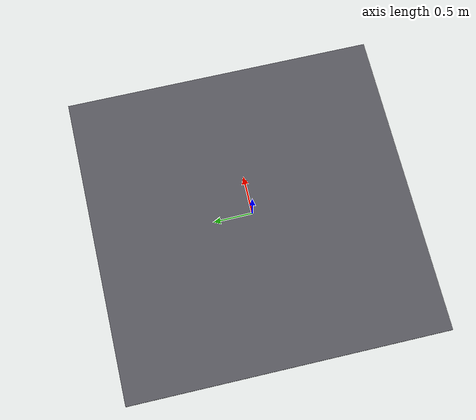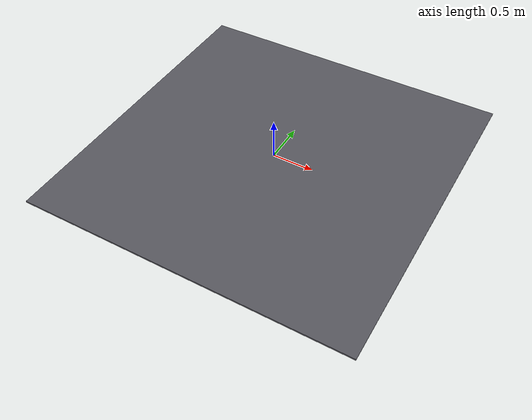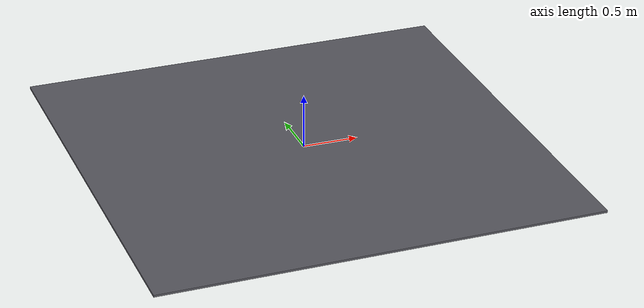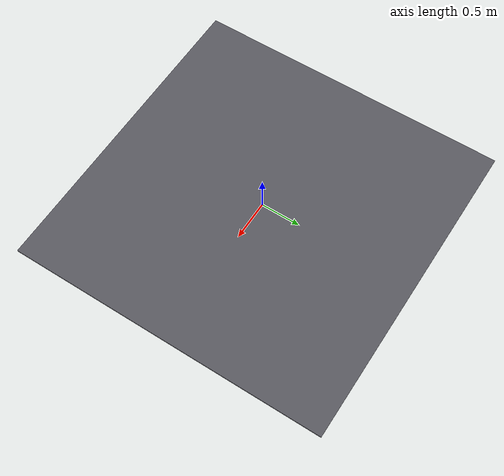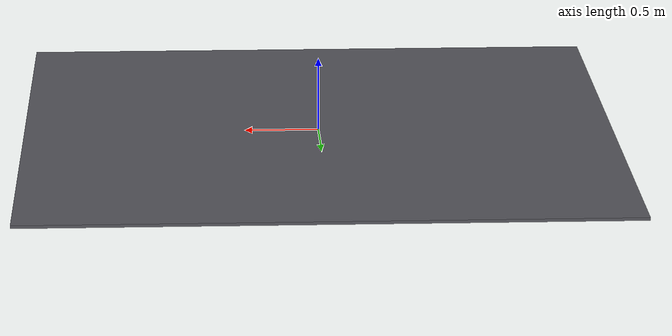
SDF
<?xml version="1.0"?>
<sdf version="1.11">
  <world name="arm_world">
    <!-- Zero gravity isolates arm kinematics and joint control before flight forces exist. -->
    <gravity>0 0 0</gravity>
    <physics name="1ms" type="ignored">
      <max_step_size>0.001</max_step_size>
      <real_time_factor>1.0</real_time_factor>
    </physics>

    <plugin filename="gz-sim-physics-system"
            name="gz::sim::systems::Physics"/>
    <plugin filename="gz-sim-user-commands-system"
            name="gz::sim::systems::UserCommands"/>
    <plugin filename="gz-sim-scene-broadcaster-system"
            name="gz::sim::systems::SceneBroadcaster"/>
    <plugin filename="gz-sim-contact-system"
            name="gz::sim::systems::Contact"/>

    <light type="directional" name="sun">
      <cast_shadows>true</cast_shadows>
      <pose>0 0 10 0 0 0</pose>
      <diffuse>0.8 0.8 0.8 1</diffuse>
      <specular>0.2 0.2 0.2 1</specular>
      <direction>-0.5 0.1 -0.9</direction>
    </light>

    <model name="reference_floor">
      <static>true</static>
      <link name="floor_link">
        <collision name="floor_collision">
          <geometry>
            <box><size>4 4 0.02</size></box>
          </geometry>
        </collision>
        <visual name="floor_visual">
          <geometry>
            <box><size>4 4 0.02</size></box>
          </geometry>
          <material>
            <ambient>0.25 0.25 0.28 1</ambient>
            <diffuse>0.35 0.35 0.38 1</diffuse>
          </material>
        </visual>
      </link>
    </model>
  </world>
</sdf>
